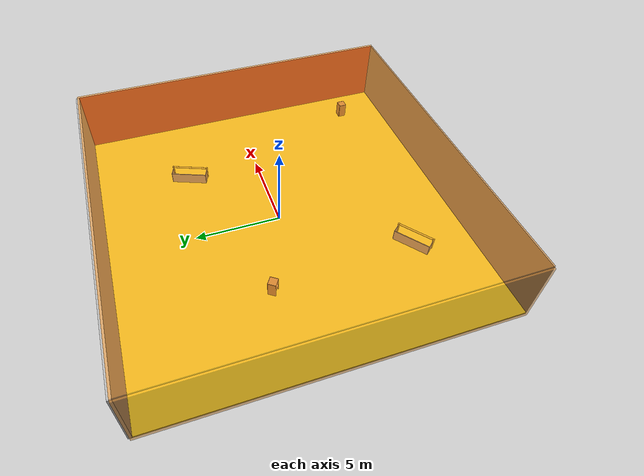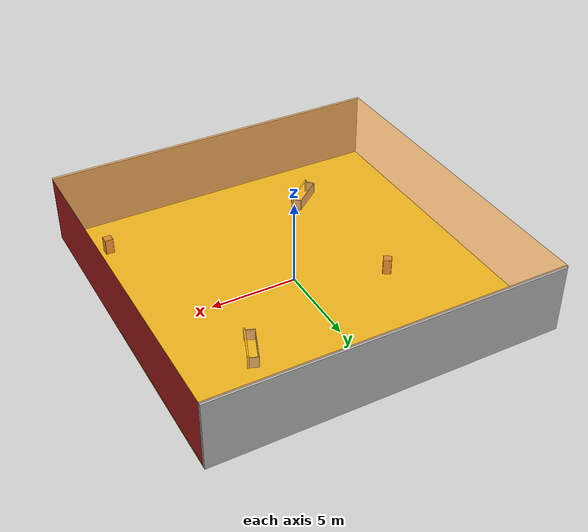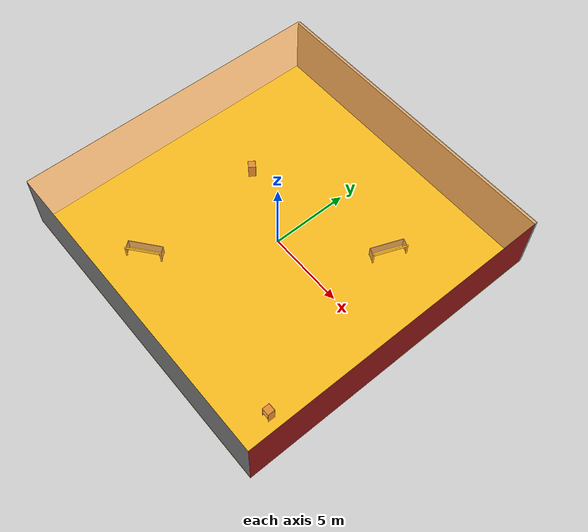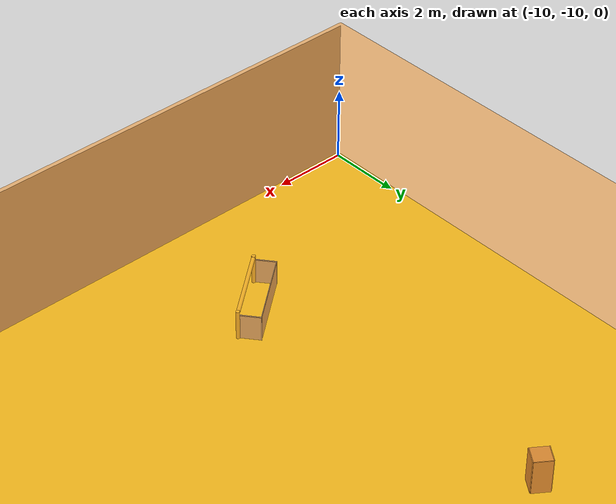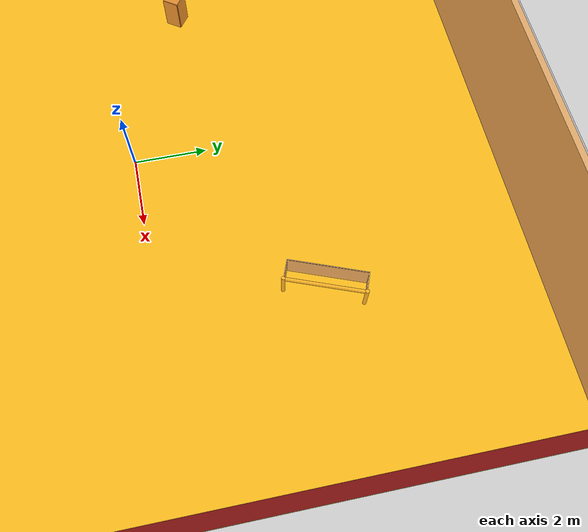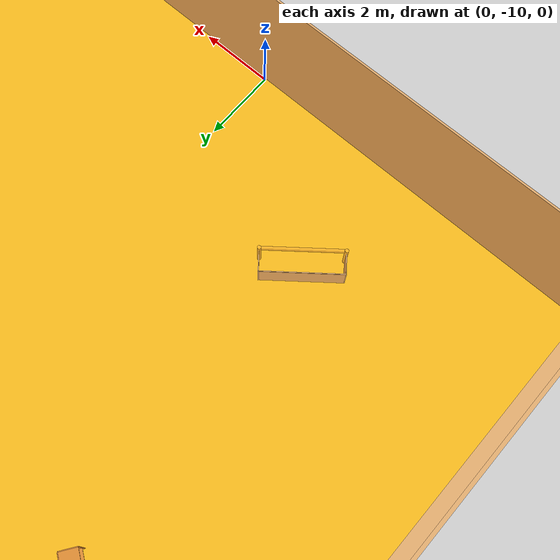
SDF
<sdf version="1.4">
 <world name="default">
  <physics type="ode">
   <max_step_size>0.001</max_step_size>
   <real_time_factor>1</real_time_factor>
   <real_time_update_rate>1000</real_time_update_rate>
   <gravity>0 0 -9.8</gravity>
  </physics>
  <scene><ambient>0.4 0.4 0.4 1</ambient><background>0.7 0.7 0.7 1</background><shadows>1</shadows></scene>
  <model name="Surrounding">
   <static>1</static>
   <link name="Ceiling">
    <collision name="Ceiling_Collision"><geometry><box><size>20 20 0.1</size></box></geometry></collision>
    <visual name="Ceiling_Visual">
     <geometry><box><size>20 20 0.1</size></box></geometry>
     <material>
      <script>
       <uri>file://media/materials/scripts/gazebo.material</uri>
       <name>Gazebo/OrangeTransparent</name>
      </script>
     </material>
    </visual>
    <pose>0 0 4.05 0 0 0</pose>
   </link>
   <link name="Wall_South">
    <collision name="Wall_South_Collision">
     <geometry><box><size>20 0 4</size></box></geometry>
     <pose>0 0 2 0 -0 0</pose>
    </collision>
    <visual name="Wall_South_Visual">
     <pose>0 0 2 0 -0 0</pose>
     <geometry><box><size>20 0 4</size></box></geometry>
     <material>
      <script><uri>file://media/materials/scripts/gazebo.material</uri><name>Gazebo/Grey</name></script>
     </material>
    </visual>
    <velocity_decay><linear>0</linear><angular>0</angular></velocity_decay>
    <pose>0 -10 0 0 -0 0</pose>
   </link>
   <link name="Wall_East">
    <collision name="Wall_21_Collision">
     <geometry><box><size>20 0 4</size></box></geometry>
     <pose>0 0 2 0 -0 0</pose>
    </collision>
    <visual name="Wall_21_Visual">
     <pose>0 0 2 0 -0 0</pose>
     <geometry><box><size>20 0 4</size></box></geometry>
     <material>
      <script><uri>file://media/materials/scripts/gazebo.material</uri><name>Gazebo/RedBright</name></script>
     </material>
    </visual>
    <velocity_decay><linear>0</linear><angular>0</angular></velocity_decay>
    <pose>10 0 0 0 -0 1.5708</pose>
   </link>
   <link name="Wall_North">
    <collision name="Wall_22_Collision">
     <geometry><box><size>20 0.2 4</size></box></geometry>
     <pose>0 0 2 0 -0 0</pose>
    </collision>
    <visual name="Wall_22_Visual">
     <pose>0 0 2 0 -0 0</pose>
     <geometry><box><size>20 0.2 4</size></box></geometry>
     <material>
      <script><uri>file://media/materials/scripts/gazebo.material</uri><name>Gazebo/Pioneer2Body</name></script>
     </material>
    </visual>
    <velocity_decay><linear>0</linear><angular>0</angular></velocity_decay>
    <pose>0 10 0 0 -0 0</pose>
   </link>
   <link name="Wall_West">
    <collision name="Wall_23_Collision">
     <geometry><box><size>20 0.2 4</size></box></geometry>
     <pose>0 0 2 0 -0 0</pose>
    </collision>
    <visual name="Wall_23_Visual">
     <pose>0 0 2 0 -0 0</pose>
     <geometry><box><size>20 0.2 4</size></box></geometry>
     <material>
      <script>
       <uri>file://media/materials/scripts/gazebo.material</uri>
       <name>Gazebo/OrangeTransparent</name>
      </script>
     </material>
    </visual>
    <velocity_decay><linear>0</linear><angular>0</angular></velocity_decay>
    <pose>-10 0 0 0 0 -1.5708</pose>
   </link>
   <link name="Ground_link">
    <collision name="collision">
     <pose>0 0 .05 0 -0 0</pose>
     <geometry><box><size>20 20 0.1</size></box></geometry>
    </collision>
    <visual name="visual">
     <pose>0 0 .05 0 -0 0</pose>
     <geometry><box><size>20 20 0.1</size></box></geometry>
     <material>
      <script><uri>file://media/materials/scripts/gazebo.material</uri><name>Gazebo/Yellow</name></script>
     </material>
    </visual>
   </link>
   <static>1</static>
  </model>
  <spherical_coordinates>
   <surface_model>EARTH_WGS84</surface_model>
   <latitude_deg>0</latitude_deg>
   <longitude_deg>0</longitude_deg>
   <elevation>0</elevation>
   <heading_deg>0</heading_deg>
  </spherical_coordinates>
  <light name="lightball_0" type="diffuse">
   <diffuse>0.8 0.8 0.8 1</diffuse>
   <specular>0.2 0.2 0.2 1</specular>
   <attenuation>
    <range>100</range>
    <constant>0.7</constant>
    <linear>0.01</linear>
    <quadratic>0.001</quadratic>
   </attenuation>
   <direction>-0.5 0.1 -0.9</direction>
   <pose>4.8651014817 8.56143393646 1.31880770225 0 0 0</pose>
  </light>
  <light name="lightball_1" type="diffuse">
   <diffuse>0.8 0.8 0.8 1</diffuse>
   <specular>0.2 0.2 0.2 1</specular>
   <attenuation>
    <range>100</range>
    <constant>0.7</constant>
    <linear>0.01</linear>
    <quadratic>0.001</quadratic>
   </attenuation>
   <direction>-0.5 0.1 -0.9</direction>
   <pose>0.106313596339 -6.08668151458 1.74227225852 0 0 0</pose>
  </light>
  <light name="lightball_2" type="diffuse">
   <diffuse>0.8 0.8 0.8 1</diffuse>
   <specular>0.2 0.2 0.2 1</specular>
   <attenuation>
    <range>100</range>
    <constant>0.7</constant>
    <linear>0.01</linear>
    <quadratic>0.001</quadratic>
   </attenuation>
   <direction>-0.5 0.1 -0.9</direction>
   <pose>9.63147537522 1.34999061153 2.80198422616 0 0 0</pose>
  </light>
  <light name="lightball_3" type="diffuse">
   <diffuse>0.8 0.8 0.8 1</diffuse>
   <specular>0.2 0.2 0.2 1</specular>
   <attenuation>
    <range>100</range>
    <constant>0.7</constant>
    <linear>0.01</linear>
    <quadratic>0.001</quadratic>
   </attenuation>
   <direction>-0.5 0.1 -0.9</direction>
   <pose>5.09038230647 -6.50500075386 2.69812553981 0 0 0</pose>
  </light>
  <light name="lightball_4" type="diffuse">
   <diffuse>0.8 0.8 0.8 1</diffuse>
   <specular>0.2 0.2 0.2 1</specular>
   <attenuation>
    <range>100</range>
    <constant>0.7</constant>
    <linear>0.01</linear>
    <quadratic>0.001</quadratic>
   </attenuation>
   <direction>-0.5 0.1 -0.9</direction>
   <pose>4.30465828895 -1.58499765079 3.27323395424 0 0 0</pose>
  </light>
  <light name="lightball_5" type="diffuse">
   <diffuse>0.8 0.8 0.8 1</diffuse>
   <specular>0.2 0.2 0.2 1</specular>
   <attenuation>
    <range>100</range>
    <constant>0.7</constant>
    <linear>0.01</linear>
    <quadratic>0.001</quadratic>
   </attenuation>
   <direction>-0.5 0.1 -0.9</direction>
   <pose>2.04544226917 9.61238642552 2.99106563633 0 0 0</pose>
  </light>
  <light name="lightball_6" type="diffuse">
   <diffuse>0.8 0.8 0.8 1</diffuse>
   <specular>0.2 0.2 0.2 1</specular>
   <attenuation>
    <range>100</range>
    <constant>0.7</constant>
    <linear>0.01</linear>
    <quadratic>0.001</quadratic>
   </attenuation>
   <direction>-0.5 0.1 -0.9</direction>
   <pose>9.31451189139 9.63770339009 3.85560988911 0 0 0</pose>
  </light>
  <light name="lightball_7" type="diffuse">
   <diffuse>0.8 0.8 0.8 1</diffuse>
   <specular>0.2 0.2 0.2 1</specular>
   <attenuation>
    <range>100</range>
    <constant>0.7</constant>
    <linear>0.01</linear>
    <quadratic>0.001</quadratic>
   </attenuation>
   <direction>-0.5 0.1 -0.9</direction>
   <pose>-8.44018154835 -0.0283967703764 3.55749269621 0 0 0</pose>
  </light>
  <light name="lightball_8" type="diffuse">
   <diffuse>0.8 0.8 0.8 1</diffuse>
   <specular>0.2 0.2 0.2 1</specular>
   <attenuation>
    <range>100</range>
    <constant>0.7</constant>
    <linear>0.01</linear>
    <quadratic>0.001</quadratic>
   </attenuation>
   <direction>-0.5 0.1 -0.9</direction>
   <pose>-6.9177300122 -6.96104860685 2.52259976089 0 0 0</pose>
  </light>
  <light name="lightball_9" type="diffuse">
   <diffuse>0.8 0.8 0.8 1</diffuse>
   <specular>0.2 0.2 0.2 1</specular>
   <attenuation>
    <range>100</range>
    <constant>0.7</constant>
    <linear>0.01</linear>
    <quadratic>0.001</quadratic>
   </attenuation>
   <direction>-0.5 0.1 -0.9</direction>
   <pose>7.86236940498 -8.92134131177 1.25895266725 0 0 0</pose>
  </light>
  <light name="lightball_10" type="diffuse">
   <diffuse>0.8 0.8 0.8 1</diffuse>
   <specular>0.2 0.2 0.2 1</specular>
   <attenuation>
    <range>100</range>
    <constant>0.7</constant>
    <linear>0.01</linear>
    <quadratic>0.001</quadratic>
   </attenuation>
   <direction>-0.5 0.1 -0.9</direction>
   <pose>8.13960492564 0.839039234272 1.12883283159 0 0 0</pose>
  </light>
  <light name="lightball_11" type="diffuse">
   <diffuse>0.8 0.8 0.8 1</diffuse>
   <specular>0.2 0.2 0.2 1</specular>
   <attenuation>
    <range>100</range>
    <constant>0.7</constant>
    <linear>0.01</linear>
    <quadratic>0.001</quadratic>
   </attenuation>
   <direction>-0.5 0.1 -0.9</direction>
   <pose>-9.51764697442 -9.94502916971 3.22476453451 0 0 0</pose>
  </light>
  <include>
   <uri>model://robocup_3Dsim_goal</uri>
   <pose>-4.00009366693 -6.7767487793 0 0 0 2.24832469697</pose>
  </include>
  <include><uri>model://cabinet</uri><pose>-4.82935503737 1.89705155963 0 0 0 0.96129584801</pose></include>
  <include>
   <uri>model://robocup_3Dsim_goal</uri>
   <pose>5.04621922795 4.2641770662 0 0 0 2.77069215984</pose>
  </include>
  <include><uri>model://cabinet</uri><pose>8.07800074077 -7.26247329286 0 0 0 1.56277562076</pose></include>
 </world>
</sdf>

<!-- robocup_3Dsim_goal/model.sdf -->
<sdf version="1.5">
  <model name="robocup_3d_goal">
    <static>true</static>
    <link name="left_post">
      <pose>0 1.05 0.45 0 0 0</pose>
      <collision name="collision">
        <geometry>
          <cylinder>
            <radius>0.05</radius>
            <length>0.9</length>
          </cylinder>
        </geometry>
      </collision>
      <visual name="visual">
        <geometry>
          <cylinder>
            <radius>0.05</radius>
            <length>0.9</length>
          </cylinder>
        </geometry>
        <material>
          <script>
            <uri>file://media/materials/scripts/gazebo.material</uri>
            <name>Gazebo/ZincYellow</name>
          </script>
        </material>
      </visual>
    </link>
    <link name="left_support_horiz_lower">
      <pose>0.30 1.05 0.01 0 0 0</pose>
      <collision name="collision">
        <geometry>
          <box>
            <size>0.50 0.02 0.02</size>
          </box>
        </geometry>
      </collision>
      <visual name="visual">
        <geometry>
          <box>
            <size>0.50 0.02 0.02</size>
          </box>
        </geometry>
        <material>
          <script>
            <uri>file://media/materials/scripts/gazebo.material</uri>
            <name>Gazebo/White</name>
          </script>
        </material>
      </visual>
    </link>
    <link name="left_support_horiz_upper">
      <pose>0.30 1.05 0.79 0 0 0</pose>
      <collision name="collision">
        <geometry>
          <box>
            <size>0.50 0.02 0.02</size>
          </box>
        </geometry>
      </collision>
      <visual name="visual">
        <geometry>
          <box>
            <size>0.50 0.02 0.02</size>
          </box>
        </geometry>
        <material>
          <script>
            <uri>file://media/materials/scripts/gazebo.material</uri>
            <name>Gazebo/White</name>
          </script>
        </material>
      </visual>
    </link>
    <link name="left_support_vertical">
      <pose>0.56 1.05 0.4 0 1.5708 0</pose>
      <collision name="collision">
        <geometry>
          <box>
            <size>0.80 0.02 0.02</size>
          </box>
        </geometry>
      </collision>
      <visual name="visual">
        <geometry>
          <box>
            <size>0.80 0.02 0.02</size>
          </box>
        </geometry>
        <material>
          <script>
            <uri>file://media/materials/scripts/gazebo.material</uri>
            <name>Gazebo/White</name>
          </script>
        </material>
      </visual>
    </link>
    <link name="right_support_horiz_lower">
      <pose>0.30 -1.05 0.01 0 0 0</pose>
      <collision name="collision">
        <geometry>
          <box>
            <size>0.50 0.02 0.02</size>
          </box>
        </geometry>
      </collision>
      <visual name="visual">
        <geometry>
          <box>
            <size>0.50 0.02 0.02</size>
          </box>
        </geometry>
        <material>
          <script>
            <uri>file://media/materials/scripts/gazebo.material</uri>
            <name>Gazebo/White</name>
          </script>
        </material>
      </visual>
    </link>
    <link name="right_support_horiz_upper">
      <pose>0.30 -1.05 0.79 0 0 0</pose>
      <collision name="collision">
        <geometry>
          <box>
            <size>0.50 0.02 0.02</size>
          </box>
        </geometry>
      </collision>
      <visual name="visual">
        <geometry>
          <box>
            <size>0.50 0.02 0.02</size>
          </box>
        </geometry>
        <material>
          <script>
            <uri>file://media/materials/scripts/gazebo.material</uri>
            <name>Gazebo/White</name>
          </script>
        </material>
      </visual>
    </link>
    <link name="right_support_vertical">
      <pose>0.56 -1.05 0.4 0 1.5708 0</pose>
      <collision name="collision">
        <geometry>
          <box>
            <size>0.80 0.02 0.02</size>
          </box>
        </geometry>
      </collision>
      <visual name="visual">
        <geometry>
          <box>
            <size>0.80 0.02 0.02</size>
          </box>
        </geometry>
        <material>
          <script>
            <uri>file://media/materials/scripts/gazebo.material</uri>
            <name>Gazebo/White</name>
          </script>
        </material>
      </visual>
    </link>
    <link name="center_support_horiz_lower">
      <pose>0.56 0 0.01 0 1.5708 0</pose>
      <collision name="collision">
        <geometry>
          <box>
            <size>0.02 2.08 0.02</size>
          </box>
        </geometry>
      </collision>
      <visual name="visual">
        <geometry>
          <box>
            <size>0.02 2.08 0.02</size>
          </box>
        </geometry>
        <material>
          <script>
            <uri>file://media/materials/scripts/gazebo.material</uri>
            <name>Gazebo/White</name>
          </script>
        </material>
      </visual>
    </link>
    <link name="center_support_horiz_upper">
      <pose>0.56 0 0.79 0 1.5708 0</pose>
      <collision name="collision">
        <geometry>
          <box>
            <size>0.02 2.08 0.02</size>
          </box>
        </geometry>
      </collision>
      <visual name="visual">
        <geometry>
          <box>
            <size>0.02 2.08 0.02</size>
          </box>
        </geometry>
        <material>
          <script>
            <uri>file://media/materials/scripts/gazebo.material</uri>
            <name>Gazebo/White</name>
          </script>
        </material>
      </visual>
    </link>
    <link name="right_post">
      <pose>0 -1.05 0.45 0 0 0</pose>
      <collision name="collision">
        <geometry>
          <cylinder>
            <radius>0.05</radius>
            <length>0.9</length>
          </cylinder>
        </geometry>
      </collision>
      <visual name="visual">
        <geometry>
          <cylinder>
            <radius>0.05</radius>
            <length>0.9</length>
          </cylinder>
        </geometry>
        <material>
          <script>
            <uri>file://media/materials/scripts/gazebo.material</uri>
            <name>Gazebo/ZincYellow</name>
          </script>
        </material>
      </visual>
    </link>
    <link name="crossbar">
      <pose>0 0 0.85 1.57 1.57 0</pose>
      <collision name="collision">
        <geometry>
          <cylinder>
            <radius>0.05</radius>
            <length>2.0</length>
          </cylinder>
        </geometry>
      </collision>
      <visual name="visual">
        <geometry>
          <cylinder>
            <radius>0.05</radius>
            <length>2.0</length>
          </cylinder>
        </geometry>
        <material>
          <script>
            <uri>file://media/materials/scripts/gazebo.material</uri>
            <name>Gazebo/ZincYellow</name>
          </script>
        </material>
      </visual>
    </link>
    <link name="center_net">
      <pose>0.56 0 0.40 0 0 0</pose>
      <collision name="collision">
        <geometry>
          <box>
            <size>0.01 2.1 0.80</size>
          </box>
        </geometry>
      </collision>
      <visual name="visual">
        <geometry>
          <box>
            <size>0.01 2.1 0.80</size>
          </box>
        </geometry>
        <material>
          <script>
            <uri>model://../model_source/models/robocup09_spl_field/materials/scripts/</uri>
            <uri>model://../model_source/models/robocup09_spl_field/materials/textures/</uri>
            <name>RoboCup/Net</name>
          </script>
        </material>
      </visual>
    </link>
    <link name="left_net">
      <pose>0.30 1.05 0.40 0 0 0</pose>
      <collision name="collision">
        <geometry>
          <box>
            <size>0.50 0.01 0.76</size>
          </box>
        </geometry>
      </collision>
      <visual name="visual">
        <geometry>
          <box>
            <size>0.50 0.01 0.76</size>
          </box>
        </geometry>
        <material>
          <script>
            <uri>model://../model_source/models/robocup09_spl_field/materials/scripts/</uri>
            <uri>model://../model_source/models/robocup09_spl_field/materials/textures/</uri>
            <name>RoboCup/Net</name>
          </script>
        </material>
      </visual>
    </link>
    <link name="right_net">
      <pose>0.30 -1.05 0.40 0 0 0</pose>
      <collision name="collision">
        <geometry>
          <box>
            <size>0.50 0.01 0.76</size>
          </box>
        </geometry>
      </collision>
      <visual name="visual">
        <geometry>
          <box>
            <size>0.50 0.01 0.76</size>
          </box>
        </geometry>
        <material>
          <script>
            <uri>model://../model_source/models/robocup09_spl_field/materials/scripts/</uri>
            <uri>model://../model_source/models/robocup09_spl_field/materials/textures/</uri>
            <name>RoboCup/Net</name>
          </script>
        </material>
      </visual>
    </link>
  </model>
</sdf>

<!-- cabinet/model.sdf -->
<sdf version="1.5">
  <model name="cabinet">
    <static>true</static>
    <link name="cabinet_bottom_plate">
      <inertial>
        <pose>0 0 -1 0 0 0</pose>
        <inertia>
          <ixx>2.050000</ixx>
          <ixy>0</ixy>
          <ixz>0</ixz>
          <iyy>2.050000</iyy>
          <iyz>0</iyz>
          <izz>2.050000</izz>
        </inertia>
        <mass>25.000000</mass>
      </inertial>
      <collision name="cabinet_bottom_plate_geom">
        <pose>0 0 0.010000 0 0 0</pose>
        <geometry>
          <box>
            <size>0.450000 0.450000 0.020000</size>
          </box>
        </geometry>
      </collision>
      <visual name="cabinet_bottom_plate_geom_visual">
        <pose>0 0 0.010000 0 0 0</pose>
        <geometry>
          <box>
            <size>0.450000 0.450000 0.020000</size>
          </box>
        </geometry>
        <material>
          <script>
            <uri>model://media/materials/scripts/gazebo.material</uri>
            <name>Gazebo/Wood</name>
          </script>
        </material>
      </visual>
      <collision name="cabinet_bottom_plate_geom_cabinet_back_plate">
        <pose>0.235000 0 0.510000 0 0 0</pose>
        <geometry>
          <box>
            <size>0.020000 0.450000 1.020000</size>
          </box>
        </geometry>
      </collision>
      <visual name="cabinet_bottom_plate_geom_cabinet_back_plate_visual">
        <pose>0.235000 0 0.510000 0 0 0</pose>
        <geometry>
          <box>
            <size>0.020000 0.450000 1.020000</size>
          </box>
        </geometry>
        <material>
          <script>
            <uri>model://media/materials/scripts/gazebo.material</uri>
            <name>Gazebo/Wood</name>
          </script>
        </material>
      </visual>
      <collision name="cabinet_bottom_plate_geom_cabinet_left_plate">
        <pose>0 0.235000 0.510000 0 0 0</pose>
        <geometry>
          <box>
            <size>0.450000 0.020000 1.020000</size>
          </box>
        </geometry>
      </collision>
      <visual name="cabinet_bottom_plate_geom_cabinet_left_plate_visual">
        <pose>0 0.235000 0.510000 0 0 0</pose>
        <geometry>
          <box>
            <size>0.450000 0.020000 1.020000</size>
          </box>
        </geometry>
        <material>
          <script>
            <uri>model://media/materials/scripts/gazebo.material</uri>
            <name>Gazebo/Wood</name>
          </script>
        </material>
      </visual>
      <collision name="cabinet_bottom_plate_geom_cabinet_middle_plate">
        <pose>0 0 0.510000 0 0 0</pose>
        <geometry>
          <box>
            <size>0.450000 0.450000 0.020000</size>
          </box>
        </geometry>
      </collision>
      <visual name="cabinet_bottom_plate_geom_cabinet_middle_plate_visual">
        <pose>0 0 0.510000 0 0 0</pose>
        <geometry>
          <box>
            <size>0.450000 0.450000 0.020000</size>
          </box>
        </geometry>
        <material>
          <script>
            <uri>model://media/materials/scripts/gazebo.material</uri>
            <name>Gazebo/Wood</name>
          </script>
        </material>
      </visual>
      <collision name="cabinet_bottom_plate_geom_cabinet_right_plate">
        <pose>0 -0.235000 0.510000 0 0 0</pose>
        <geometry>
          <box>
            <size>0.450000 0.020000 1.020000</size>
          </box>
        </geometry>
      </collision>
      <visual name="cabinet_bottom_plate_geom_cabinet_right_plate_visual">
        <pose>0 -0.235000 0.510000 0 0 0</pose>
        <geometry>
          <box>
            <size>0.450000 0.020000 1.020000</size>
          </box>
        </geometry>
        <material>
          <script>
            <uri>model://media/materials/scripts/gazebo.material</uri>
            <name>Gazebo/Wood</name>
          </script>
        </material>
      </visual>
      <collision name="cabinet_bottom_plate_geom_cabinet_top_plate">
        <pose>0 0 1.010000 0 0 0</pose>
        <geometry>
          <box>
            <size>0.450000 0.450000 0.020000</size>
          </box>
        </geometry>
      </collision>
      <visual name="cabinet_bottom_plate_geom_cabinet_top_plate_visual">
        <pose>0 0 1.010000 0 0 0</pose>
        <geometry>
          <box>
            <size>0.450000 0.450000 0.020000</size>
          </box>
        </geometry>
        <material>
          <script>
            <uri>model://media/materials/scripts/gazebo.material</uri>
            <name>Gazebo/Wood</name>
          </script>
        </material>
      </visual>
    </link>
  </model>
</sdf>
